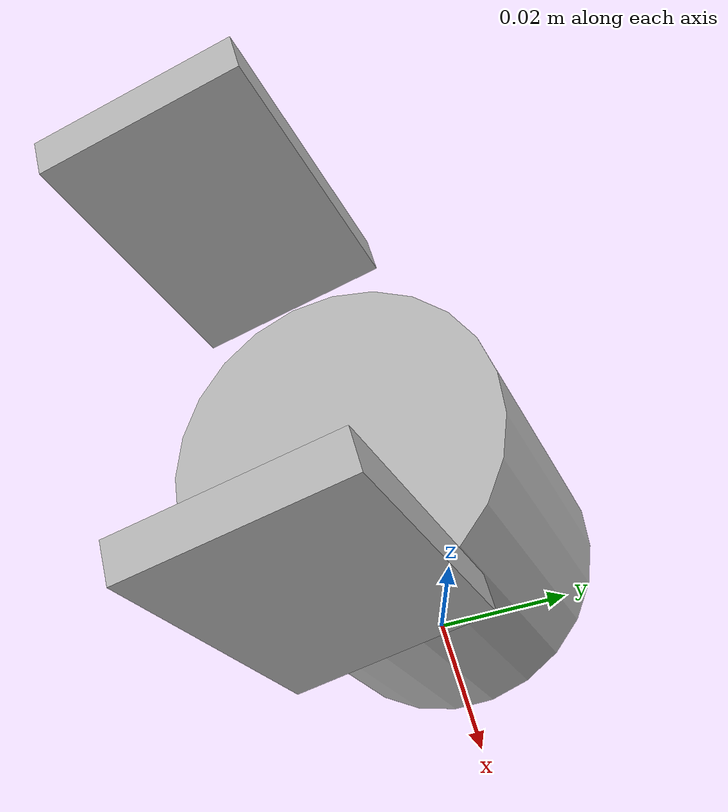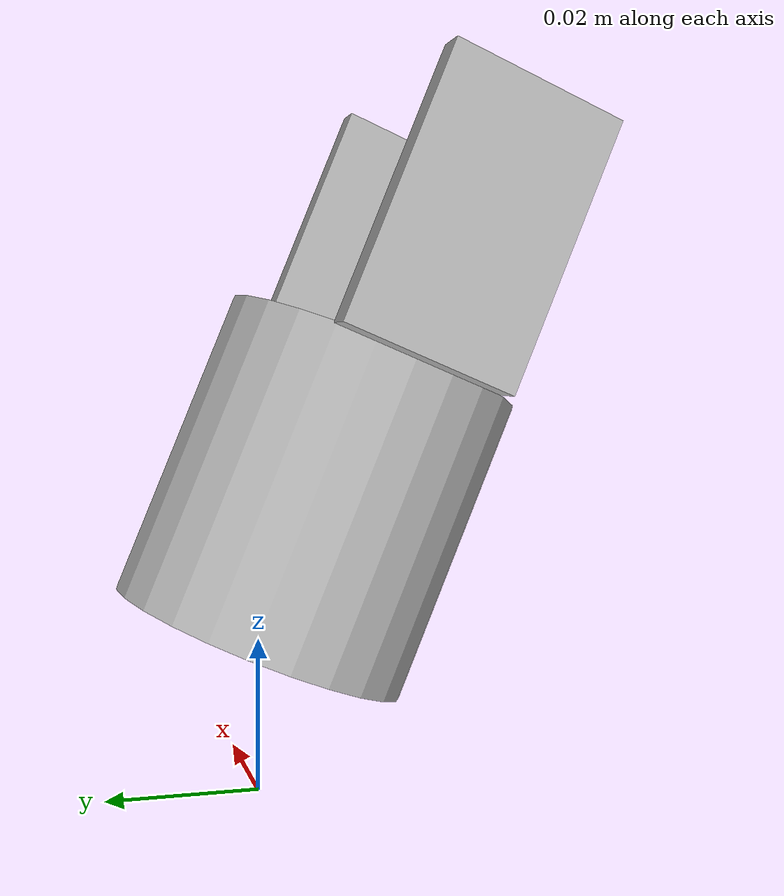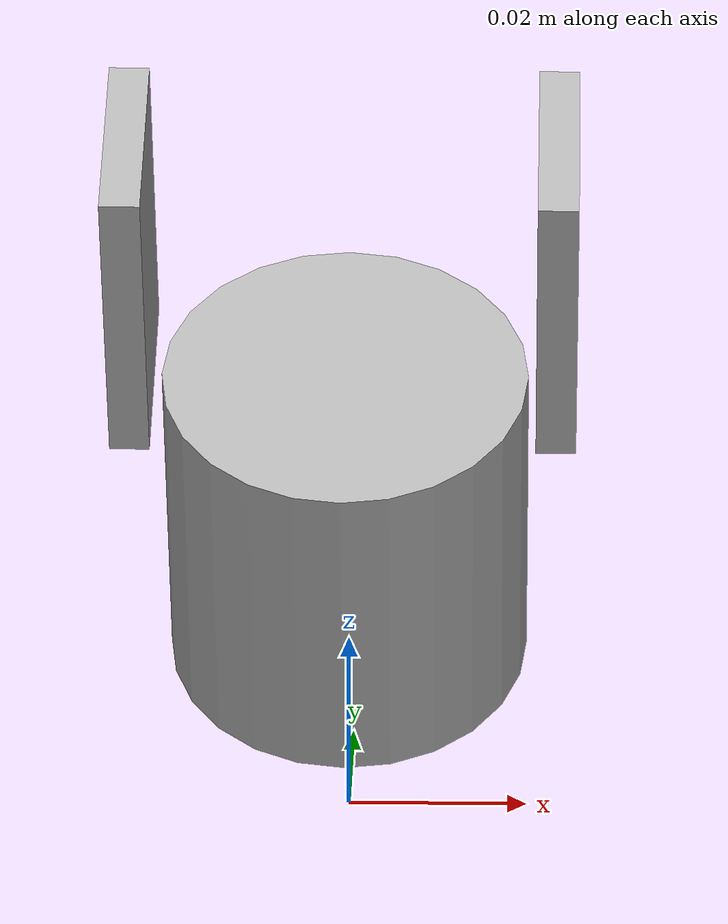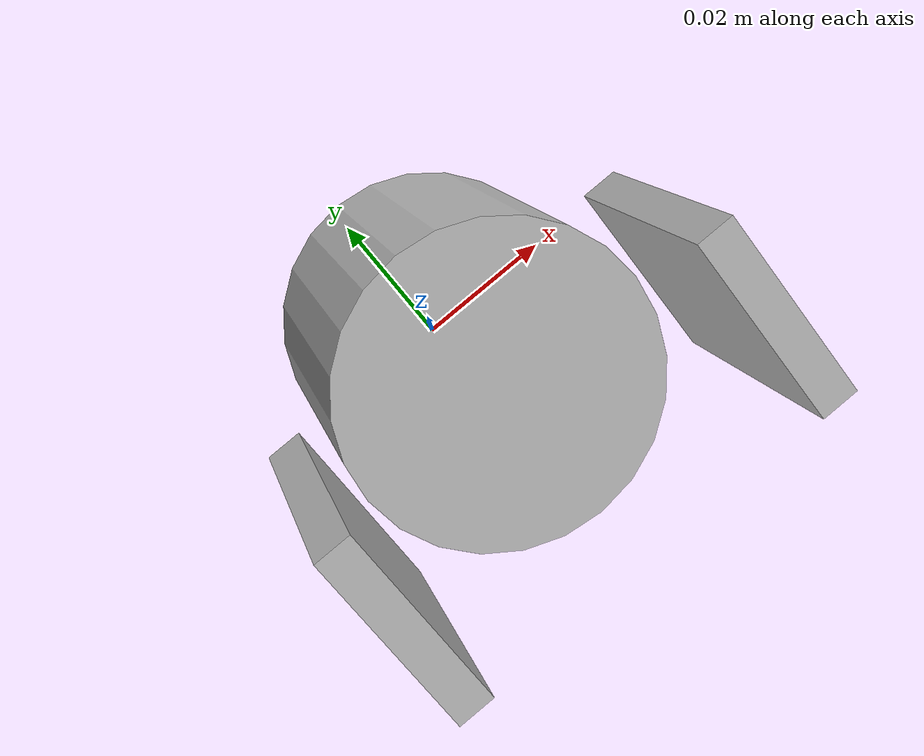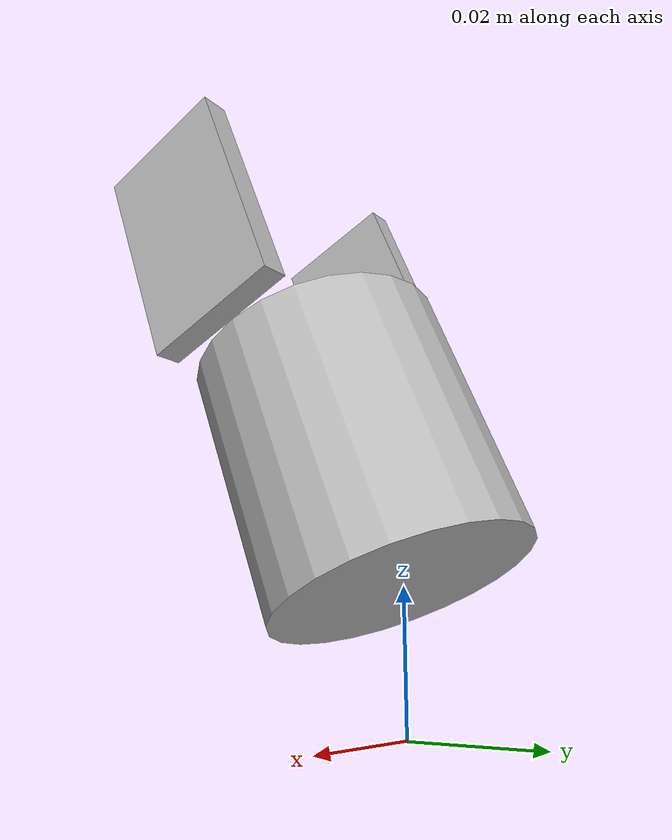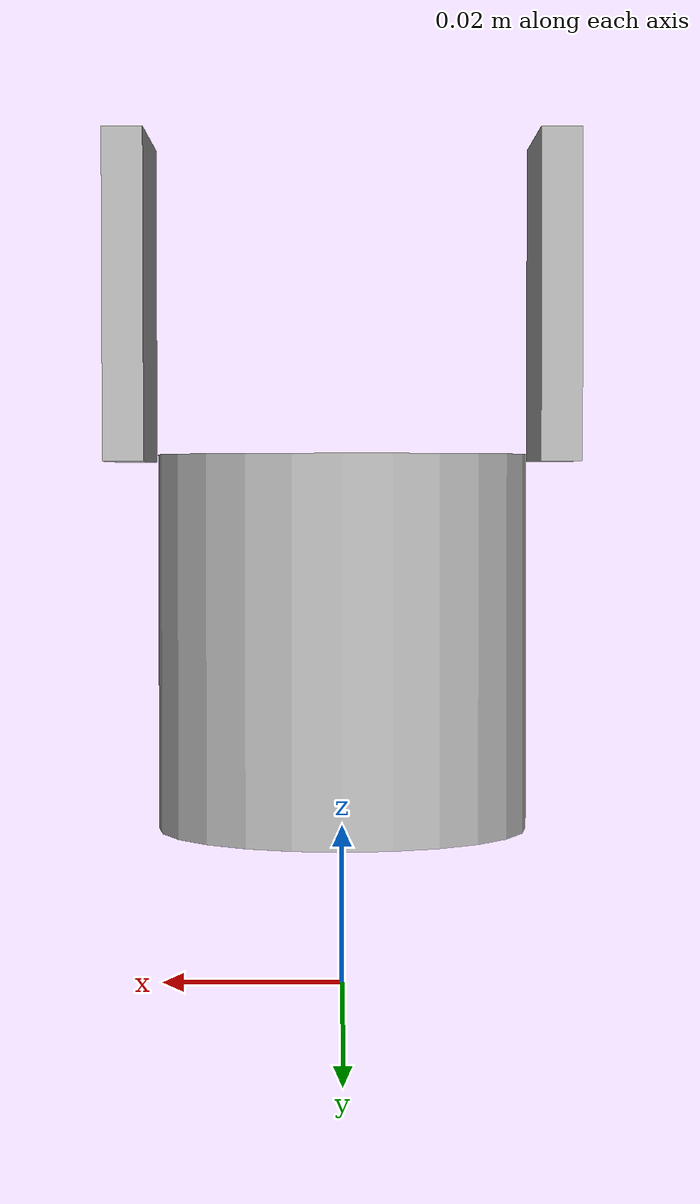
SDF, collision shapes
<?xml version="1.0" ?>
<sdf version="1.6">
  <model name="u_joint_part">
    <pose>0 0 0.0198225 0.392675 0 0</pose>
    <link name="link">
      <inertial>
        <pose>0 0 0.020215 0 0 0</pose>
        <mass>0.125</mass>
        <inertia>
          <ixx>0.00187558627</ixx>
          <ixy>0</ixy>
          <ixz>0</ixz>
          <iyy>0.00187558627</iyy>
          <iyz>0</iyz>
          <izz>0.00157172602</izz>
        </inertia>
      </inertial>

      <collision name="collision1">
        <pose>0 0 0.020215 0 0 0</pose>
        <geometry>
          <cylinder>
            <radius>0.0198225</radius>
            <length>0.04043</length>
          </cylinder>
        </geometry>
      </collision>

      <collision name="collision2">
        <pose>-0.02281 0 0.05701 0 0 0</pose>
        <geometry>
          <box>
            <size>0.00429 0.022155 0.034695</size>
          </box>
        </geometry>
      </collision>

      <collision name="collision3">
        <pose>0.02281 0 0.05701 0 0 0</pose>
        <geometry>
          <box>
            <size>0.00429 0.022155 0.034695</size>
          </box>
        </geometry>
      </collision>

      <visual name="visual">
         <geometry>
           <mesh>
             <uri>model://u_joint_part/meshes/u_joint.dae</uri>
             <scale>0.25 0.25 0.25</scale>
           </mesh>
         </geometry>
        <material>
          <script>
            <uri>model://arm_part/materials/scripts</uri>
            <uri>model://arm_part/materials/textures</uri>
            <name>ArmPart/Diffuse</name>
          </script>
        </material>
       </visual>
    </link>
  </model>
</sdf>
